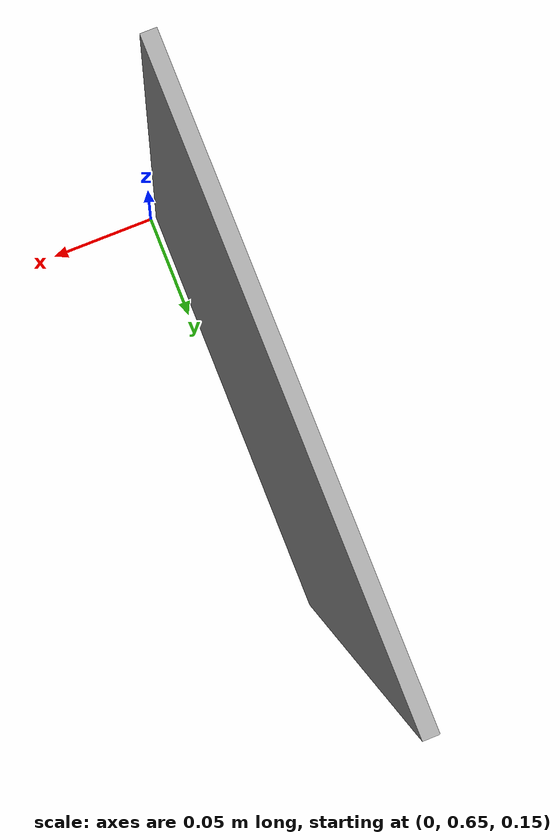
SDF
<?xml version="1.0" ?>
<sdf version="1.5">
  <model name="obstacle_09">
    <static>true</static>
    <link name="link">
      <pose>0 0 0 0 0 0</pose>
      <collision name="collision">
        <geometry>
            <mesh>
              <uri>
                model://obstacle_09/mesh/ostacolo_09.stl
              </uri>
              <scale>
                0.001 0.001 0.001
              </scale>
            </mesh>
        </geometry>
      </collision>

      <visual name="tag">
        <pose>-0.005 0.75 0.25 0 0 1.57</pose>
        <geometry>
          <box>
            <size>0.2 0.005 0.2</size>
          </box>
        </geometry>
        <material>
          <script>
            <uri>model://obstacle_09/material/scripts</uri>
            <uri>model://obstacle_09/material/textures</uri>
            <name>obstacle_09</name>
          </script>
        </material>
      </visual>

      <visual name="visual">
        <cast_shadows>true</cast_shadows>
        <geometry>
            <mesh>
              <uri>
                model://obstacle_09/mesh/ostacolo_09.stl
              </uri>
              <scale>
                0.001 0.001 0.001
              </scale>
            </mesh>
        </geometry>
        <material> <!-- color yellow -->
          <ambient>232 230 75 1</ambient>
          <diffuse>232 230 75 1</diffuse>
          <specular>0 0 0 0</specular>
          <emissive>0 0 0 1</emissive>
        </material>
      </visual>

    </link>
  </model>
</sdf>
